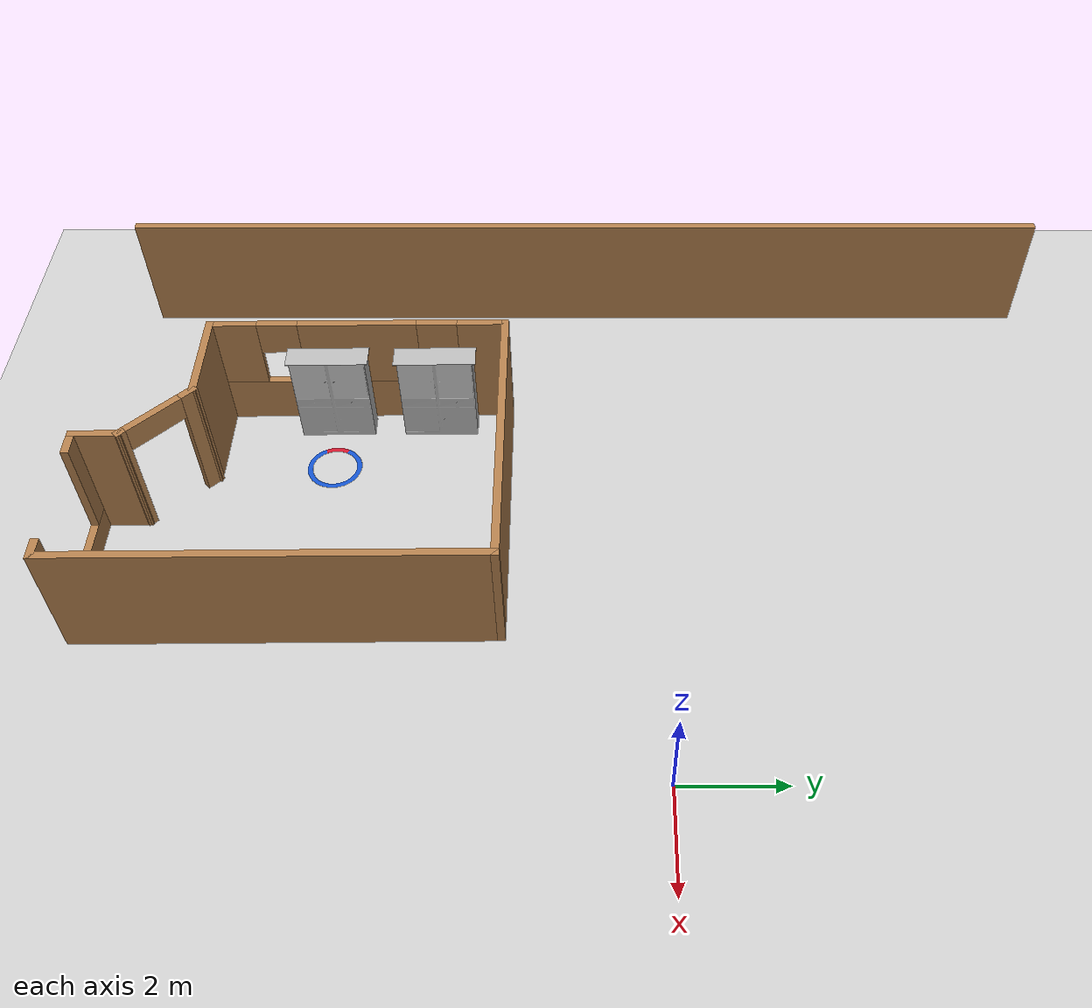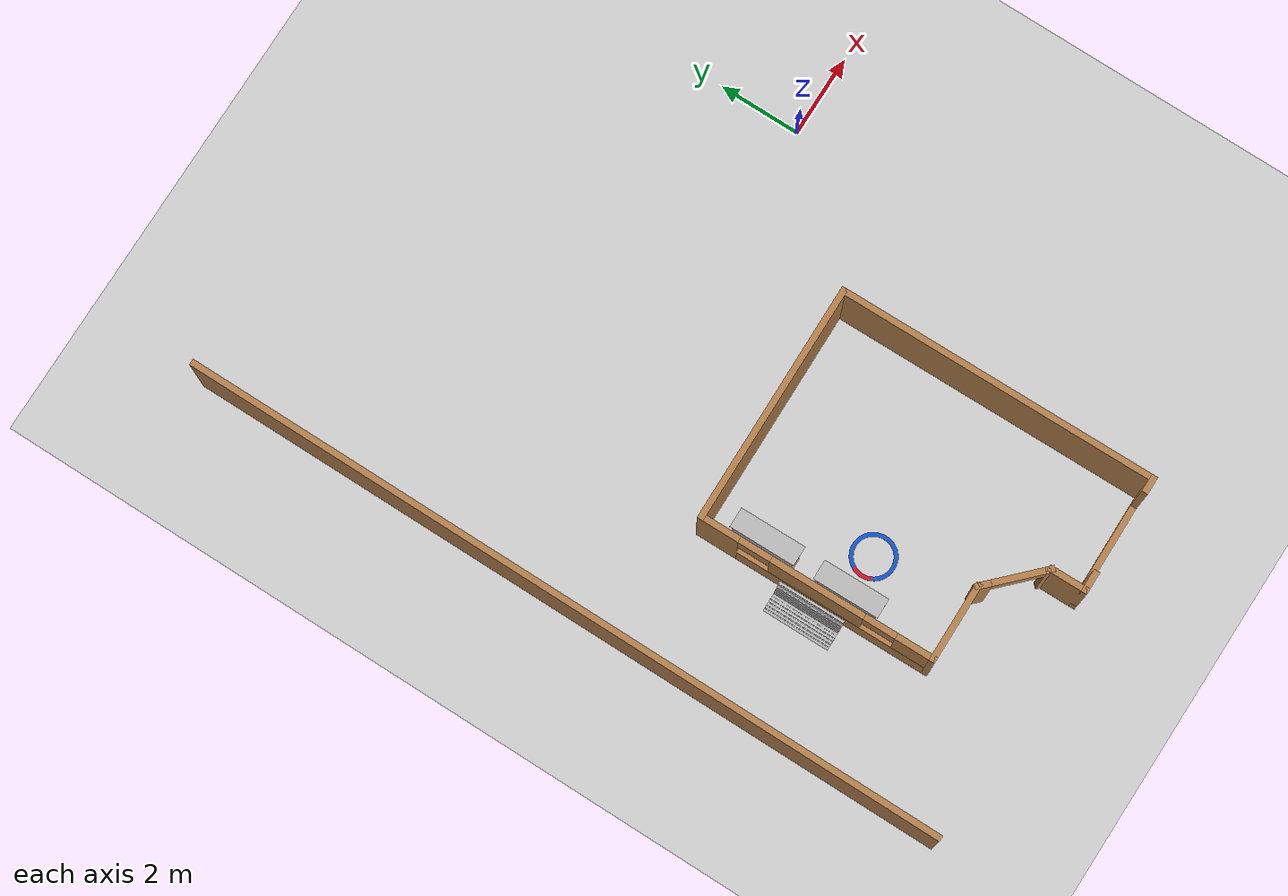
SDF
<sdf version="1.6">
 <world name="default">
  <model name="ground_plane">
   <static>1</static>
   <link name="link">
    <collision name="collision">
     <geometry><plane><normal>0 0 1</normal><size>100 100</size></plane></geometry>
     <surface>
      <contact><collide_bitmask>65535</collide_bitmask></contact>
      <friction><ode><mu>100</mu><mu2>50</mu2></ode></friction>
     </surface>
    </collision>
    <visual name="visual">
     <cast_shadows>0</cast_shadows>
     <geometry><plane><normal>0 0 1</normal><size>100 100</size></plane></geometry>
     <material>
      <script><uri>file://media/materials/scripts/gazebo.material</uri><name>Gazebo/Grey</name></script>
     </material>
    </visual>
   </link>
  </model>
  <model name="hospital_room_empty_clone">
   <link name="Wall_0">
    <pose>-4e-06 -3.9165 0 0 -0 0</pose>
    <visual name="Wall_0_Visual">
     <pose>0 0 1.25 0 -0 0</pose>
     <geometry><box><size>6 0.15 2.5</size></box></geometry>
     <material>
      <script><uri>file://media/materials/scripts/gazebo.material</uri><name>Gazebo/Wood</name></script>
      <ambient>1 1 1 1</ambient>
     </material>
     <meta><layer>0</layer></meta>
    </visual>
    <collision name="Wall_0_Collision">
     <pose>0 0 1.25 0 -0 0</pose>
     <geometry><box><size>6 0.15 2.5</size></box></geometry>
     <surface>
      <friction>
       <ode><mu>1</mu><mu2>1</mu2><fdir1>0 0 0</fdir1><slip1>0</slip1><slip2>0</slip2></ode>
       <torsional>
        <coefficient>1</coefficient>
        <patch_radius>0</patch_radius>
        <surface_radius>0</surface_radius>
        <use_patch_radius>1</use_patch_radius>
        <ode><slip>0</slip></ode>
       </torsional>
      </friction>
      <bounce><restitution_coefficient>0</restitution_coefficient><threshold>1e+06</threshold></bounce>
      <contact>
       <collide_without_contact>0</collide_without_contact>
       <collide_without_contact_bitmask>1</collide_without_contact_bitmask>
       <collide_bitmask>1</collide_bitmask>
       <ode>
        <soft_cfm>0</soft_cfm>
        <soft_erp>0.2</soft_erp>
        <kp>1e+13</kp>
        <kd>1</kd>
        <max_vel>0.01</max_vel>
        <min_depth>0</min_depth>
       </ode>
       <bullet>
        <split_impulse>1</split_impulse>
        <split_impulse_penetration_threshold>-0.01</split_impulse_penetration_threshold>
        <soft_cfm>0</soft_cfm>
        <soft_erp>0.2</soft_erp>
        <kp>1e+13</kp>
        <kd>1</kd>
       </bullet>
      </contact>
     </surface>
    </collision>
   </link>
   <link name="Wall_3">
    <pose>-2.925 0 0 0 -0 1.5708</pose>
    <visual name="Wall_3_Visual">
     <pose>0 0 1.25 0 -0 0</pose>
     <geometry><box><size>7.98302 0.15 2.5</size></box></geometry>
     <material>
      <script><uri>file://media/materials/scripts/gazebo.material</uri><name>Gazebo/Wood</name></script>
      <ambient>1 1 1 1</ambient>
     </material>
     <meta><layer>0</layer></meta>
    </visual>
    <collision name="Wall_3_Collision">
     <pose>0 0 1.25 0 -0 0</pose>
     <geometry><box><size>7.98302 0.15 2.5</size></box></geometry>
     <surface>
      <friction>
       <ode><mu>1</mu><mu2>1</mu2><fdir1>0 0 0</fdir1><slip1>0</slip1><slip2>0</slip2></ode>
       <torsional>
        <coefficient>1</coefficient>
        <patch_radius>0</patch_radius>
        <surface_radius>0</surface_radius>
        <use_patch_radius>1</use_patch_radius>
        <ode><slip>0</slip></ode>
       </torsional>
      </friction>
      <bounce><restitution_coefficient>0</restitution_coefficient><threshold>1e+06</threshold></bounce>
      <contact>
       <collide_without_contact>0</collide_without_contact>
       <collide_without_contact_bitmask>1</collide_without_contact_bitmask>
       <collide_bitmask>1</collide_bitmask>
       <ode>
        <soft_cfm>0</soft_cfm>
        <soft_erp>0.2</soft_erp>
        <kp>1e+13</kp>
        <kd>1</kd>
        <max_vel>0.01</max_vel>
        <min_depth>0</min_depth>
       </ode>
       <bullet>
        <split_impulse>1</split_impulse>
        <split_impulse_penetration_threshold>-0.01</split_impulse_penetration_threshold>
        <soft_cfm>0</soft_cfm>
        <soft_erp>0.2</soft_erp>
        <kp>1e+13</kp>
        <kd>1</kd>
       </bullet>
      </contact>
     </surface>
    </collision>
   </link>
   <link name="Wall_4">
    <pose>-1.5 3.9165 0 0 -0 0</pose>
    <visual name="Wall_4_Visual_0">
     <pose>-1.28125 0 1.25 0 -0 0</pose>
     <geometry><box><size>0.437506 0.15 2.5</size></box></geometry>
     <material>
      <script><uri>file://media/materials/scripts/gazebo.material</uri><name>Gazebo/Wood</name></script>
      <ambient>1 1 1 1</ambient>
     </material>
     <meta><layer>0</layer></meta>
    </visual>
    <visual name="Wall_4_Visual_1">
     <pose>0.218753 0 0.25 0 -0 0</pose>
     <geometry><box><size>2.56249 0.15 0.5</size></box></geometry>
     <material>
      <script><uri>file://media/materials/scripts/gazebo.material</uri><name>Gazebo/Wood</name></script>
      <ambient>1 1 1 1</ambient>
     </material>
     <meta><layer>0</layer></meta>
    </visual>
    <visual name="Wall_4_Visual_2">
     <pose>1.21875 0 1.5 0 -0 0</pose>
     <geometry><box><size>0.562494 0.15 2</size></box></geometry>
     <material>
      <script><uri>file://media/materials/scripts/gazebo.material</uri><name>Gazebo/Wood</name></script>
      <ambient>1 1 1 1</ambient>
     </material>
     <meta><layer>0</layer></meta>
    </visual>
    <collision name="Wall_4_Collision_0">
     <pose>-1.28125 0 1.25 0 -0 0</pose>
     <geometry><box><size>0.437506 0.15 2.5</size></box></geometry>
     <surface>
      <friction>
       <ode><mu>1</mu><mu2>1</mu2><fdir1>0 0 0</fdir1><slip1>0</slip1><slip2>0</slip2></ode>
       <torsional>
        <coefficient>1</coefficient>
        <patch_radius>0</patch_radius>
        <surface_radius>0</surface_radius>
        <use_patch_radius>1</use_patch_radius>
        <ode><slip>0</slip></ode>
       </torsional>
      </friction>
      <bounce><restitution_coefficient>0</restitution_coefficient><threshold>1e+06</threshold></bounce>
      <contact>
       <collide_without_contact>0</collide_without_contact>
       <collide_without_contact_bitmask>1</collide_without_contact_bitmask>
       <collide_bitmask>1</collide_bitmask>
       <ode>
        <soft_cfm>0</soft_cfm>
        <soft_erp>0.2</soft_erp>
        <kp>1e+13</kp>
        <kd>1</kd>
        <max_vel>0.01</max_vel>
        <min_depth>0</min_depth>
       </ode>
       <bullet>
        <split_impulse>1</split_impulse>
        <split_impulse_penetration_threshold>-0.01</split_impulse_penetration_threshold>
        <soft_cfm>0</soft_cfm>
        <soft_erp>0.2</soft_erp>
        <kp>1e+13</kp>
        <kd>1</kd>
       </bullet>
      </contact>
     </surface>
    </collision>
    <collision name="Wall_4_Collision_1">
     <pose>0.218753 0 0.25 0 -0 0</pose>
     <geometry><box><size>2.56249 0.15 0.5</size></box></geometry>
     <surface>
      <friction>
       <ode><mu>1</mu><mu2>1</mu2><fdir1>0 0 0</fdir1><slip1>0</slip1><slip2>0</slip2></ode>
       <torsional>
        <coefficient>1</coefficient>
        <patch_radius>0</patch_radius>
        <surface_radius>0</surface_radius>
        <use_patch_radius>1</use_patch_radius>
        <ode><slip>0</slip></ode>
       </torsional>
      </friction>
      <bounce><restitution_coefficient>0</restitution_coefficient><threshold>1e+06</threshold></bounce>
      <contact>
       <collide_without_contact>0</collide_without_contact>
       <collide_without_contact_bitmask>1</collide_without_contact_bitmask>
       <collide_bitmask>1</collide_bitmask>
       <ode>
        <soft_cfm>0</soft_cfm>
        <soft_erp>0.2</soft_erp>
        <kp>1e+13</kp>
        <kd>1</kd>
        <max_vel>0.01</max_vel>
        <min_depth>0</min_depth>
       </ode>
       <bullet>
        <split_impulse>1</split_impulse>
        <split_impulse_penetration_threshold>-0.01</split_impulse_penetration_threshold>
        <soft_cfm>0</soft_cfm>
        <soft_erp>0.2</soft_erp>
        <kp>1e+13</kp>
        <kd>1</kd>
       </bullet>
      </contact>
     </surface>
    </collision>
    <collision name="Wall_4_Collision_2">
     <pose>1.21875 0 1.5 0 -0 0</pose>
     <geometry><box><size>0.562494 0.15 2</size></box></geometry>
     <surface>
      <friction>
       <ode><mu>1</mu><mu2>1</mu2><fdir1>0 0 0</fdir1><slip1>0</slip1><slip2>0</slip2></ode>
       <torsional>
        <coefficient>1</coefficient>
        <patch_radius>0</patch_radius>
        <surface_radius>0</surface_radius>
        <use_patch_radius>1</use_patch_radius>
        <ode><slip>0</slip></ode>
       </torsional>
      </friction>
      <bounce><restitution_coefficient>0</restitution_coefficient><threshold>1e+06</threshold></bounce>
      <contact>
       <collide_without_contact>0</collide_without_contact>
       <collide_without_contact_bitmask>1</collide_without_contact_bitmask>
       <collide_bitmask>1</collide_bitmask>
       <ode>
        <soft_cfm>0</soft_cfm>
        <soft_erp>0.2</soft_erp>
        <kp>1e+13</kp>
        <kd>1</kd>
        <max_vel>0.01</max_vel>
        <min_depth>0</min_depth>
       </ode>
       <bullet>
        <split_impulse>1</split_impulse>
        <split_impulse_penetration_threshold>-0.01</split_impulse_penetration_threshold>
        <soft_cfm>0</soft_cfm>
        <soft_erp>0.2</soft_erp>
        <kp>1e+13</kp>
        <kd>1</kd>
       </bullet>
      </contact>
     </surface>
    </collision>
   </link>
   <link name="Wall_5">
    <pose>-0.075004 3.4915 0 0 0 -1.5708</pose>
    <visual name="Wall_5_Visual">
     <pose>0 0 1.25 0 -0 0</pose>
     <geometry><box><size>1 0.15 2.5</size></box></geometry>
     <material>
      <script><uri>file://media/materials/scripts/gazebo.material</uri><name>Gazebo/Wood</name></script>
      <ambient>1 1 1 1</ambient>
     </material>
     <meta><layer>0</layer></meta>
    </visual>
    <collision name="Wall_5_Collision">
     <pose>0 0 1.25 0 -0 0</pose>
     <geometry><box><size>1 0.15 2.5</size></box></geometry>
     <surface>
      <friction>
       <ode><mu>1</mu><mu2>1</mu2><fdir1>0 0 0</fdir1><slip1>0</slip1><slip2>0</slip2></ode>
       <torsional>
        <coefficient>1</coefficient>
        <patch_radius>0</patch_radius>
        <surface_radius>0</surface_radius>
        <use_patch_radius>1</use_patch_radius>
        <ode><slip>0</slip></ode>
       </torsional>
      </friction>
      <bounce><restitution_coefficient>0</restitution_coefficient><threshold>1e+06</threshold></bounce>
      <contact>
       <collide_without_contact>0</collide_without_contact>
       <collide_without_contact_bitmask>1</collide_without_contact_bitmask>
       <collide_bitmask>1</collide_bitmask>
       <ode>
        <soft_cfm>0</soft_cfm>
        <soft_erp>0.2</soft_erp>
        <kp>1e+13</kp>
        <kd>1</kd>
        <max_vel>0.01</max_vel>
        <min_depth>0</min_depth>
       </ode>
       <bullet>
        <split_impulse>1</split_impulse>
        <split_impulse_penetration_threshold>-0.01</split_impulse_penetration_threshold>
        <soft_cfm>0</soft_cfm>
        <soft_erp>0.2</soft_erp>
        <kp>1e+13</kp>
        <kd>1</kd>
       </bullet>
      </contact>
     </surface>
    </collision>
   </link>
   <link name="Wall_7">
    <pose>2.925 -1 0 0 -0 1.5708</pose>
    <visual name="Wall_7_Visual_0">
     <pose>-2.47597 0 1.25 0 -0 0</pose>
     <geometry><box><size>1.03106 0.15 2.5</size></box></geometry>
     <material>
      <script><uri>file://media/materials/scripts/gazebo.material</uri><name>Gazebo/Wood</name></script>
      <ambient>0.921569 0.807843 0.615686 1</ambient>
     </material>
     <meta><layer>0</layer></meta>
    </visual>
    <visual name="Wall_7_Visual_1">
     <pose>0.515531 0 0.5 0 -0 0</pose>
     <geometry><box><size>4.95194 0.15 1</size></box></geometry>
     <material>
      <script><uri>file://media/materials/scripts/gazebo.material</uri><name>Gazebo/Wood</name></script>
      <ambient>0.921569 0.807843 0.615686 1</ambient>
     </material>
     <meta><layer>0</layer></meta>
    </visual>
    <visual name="Wall_7_Visual_2">
     <pose>0.016139 0 1.75 0 -0 0</pose>
     <geometry><box><size>2.35315 0.15 1.5</size></box></geometry>
     <material>
      <script><uri>file://media/materials/scripts/gazebo.material</uri><name>Gazebo/Wood</name></script>
      <ambient>0.921569 0.807843 0.615686 1</ambient>
     </material>
     <meta><layer>0</layer></meta>
    </visual>
    <visual name="Wall_7_Visual_3">
     <pose>2.49211 0 1.75 0 -0 0</pose>
     <geometry><box><size>0.998785 0.15 1.5</size></box></geometry>
     <material>
      <script><uri>file://media/materials/scripts/gazebo.material</uri><name>Gazebo/Wood</name></script>
      <ambient>0.921569 0.807843 0.615686 1</ambient>
     </material>
     <meta><layer>0</layer></meta>
    </visual>
    <visual name="Wall_7_Visual_4">
     <pose>-1.56044 0 2.15 0 -0 0</pose>
     <geometry><box><size>0.8 0.15 0.7</size></box></geometry>
     <material>
      <script><uri>file://media/materials/scripts/gazebo.material</uri><name>Gazebo/Wood</name></script>
      <ambient>0.921569 0.807843 0.615686 1</ambient>
     </material>
     <meta><layer>0</layer></meta>
    </visual>
    <visual name="Wall_7_Visual_5">
     <pose>1.59272 0 2.15 0 -0 0</pose>
     <geometry><box><size>0.8 0.15 0.7</size></box></geometry>
     <material>
      <script><uri>file://media/materials/scripts/gazebo.material</uri><name>Gazebo/Wood</name></script>
      <ambient>0.921569 0.807843 0.615686 1</ambient>
     </material>
     <meta><layer>0</layer></meta>
    </visual>
    <collision name="Wall_7_Collision_0">
     <pose>-2.47597 0 1.25 0 -0 0</pose>
     <geometry><box><size>1.03106 0.15 2.5</size></box></geometry>
     <surface>
      <friction>
       <ode><mu>1</mu><mu2>1</mu2><fdir1>0 0 0</fdir1><slip1>0</slip1><slip2>0</slip2></ode>
       <torsional>
        <coefficient>1</coefficient>
        <patch_radius>0</patch_radius>
        <surface_radius>0</surface_radius>
        <use_patch_radius>1</use_patch_radius>
        <ode><slip>0</slip></ode>
       </torsional>
      </friction>
      <bounce><restitution_coefficient>0</restitution_coefficient><threshold>1e+06</threshold></bounce>
      <contact>
       <collide_without_contact>0</collide_without_contact>
       <collide_without_contact_bitmask>1</collide_without_contact_bitmask>
       <collide_bitmask>1</collide_bitmask>
       <ode>
        <soft_cfm>0</soft_cfm>
        <soft_erp>0.2</soft_erp>
        <kp>1e+13</kp>
        <kd>1</kd>
        <max_vel>0.01</max_vel>
        <min_depth>0</min_depth>
       </ode>
       <bullet>
        <split_impulse>1</split_impulse>
        <split_impulse_penetration_threshold>-0.01</split_impulse_penetration_threshold>
        <soft_cfm>0</soft_cfm>
        <soft_erp>0.2</soft_erp>
        <kp>1e+13</kp>
        <kd>1</kd>
       </bullet>
      </contact>
     </surface>
    </collision>
    <collision name="Wall_7_Collision_1">
     <pose>0.515531 0 0.5 0 -0 0</pose>
     <geometry><box><size>4.95194 0.15 1</size></box></geometry>
     <surface>
      <friction>
       <ode><mu>1</mu><mu2>1</mu2><fdir1>0 0 0</fdir1><slip1>0</slip1><slip2>0</slip2></ode>
       <torsional>
        <coefficient>1</coefficient>
        <patch_radius>0</patch_radius>
        <surface_radius>0</surface_radius>
        <use_patch_radius>1</use_patch_radius>
        <ode><slip>0</slip></ode>
       </torsional>
      </friction>
      <bounce><restitution_coefficient>0</restitution_coefficient><threshold>1e+06</threshold></bounce>
      <contact>
       <collide_without_contact>0</collide_without_contact>
       <collide_without_contact_bitmask>1</collide_without_contact_bitmask>
       <collide_bitmask>1</collide_bitmask>
       <ode>
        <soft_cfm>0</soft_cfm>
        <soft_erp>0.2</soft_erp>
        <kp>1e+13</kp>
        <kd>1</kd>
        <max_vel>0.01</max_vel>
        <min_depth>0</min_depth>
       </ode>
       <bullet>
        <split_impulse>1</split_impulse>
        <split_impulse_penetration_threshold>-0.01</split_impulse_penetration_threshold>
        <soft_cfm>0</soft_cfm>
        <soft_erp>0.2</soft_erp>
        <kp>1e+13</kp>
        <kd>1</kd>
       </bullet>
      </contact>
     </surface>
    </collision>
    <collision name="Wall_7_Collision_2">
     <pose>0.016139 0 1.75 0 -0 0</pose>
     <geometry><box><size>2.35315 0.15 1.5</size></box></geometry>
     <surface>
      <friction>
       <ode><mu>1</mu><mu2>1</mu2><fdir1>0 0 0</fdir1><slip1>0</slip1><slip2>0</slip2></ode>
       <torsional>
        <coefficient>1</coefficient>
        <patch_radius>0</patch_radius>
        <surface_radius>0</surface_radius>
        <use_patch_radius>1</use_patch_radius>
        <ode><slip>0</slip></ode>
       </torsional>
      </friction>
      <bounce><restitution_coefficient>0</restitution_coefficient><threshold>1e+06</threshold></bounce>
      <contact>
       <collide_without_contact>0</collide_without_contact>
       <collide_without_contact_bitmask>1</collide_without_contact_bitmask>
       <collide_bitmask>1</collide_bitmask>
       <ode>
        <soft_cfm>0</soft_cfm>
        <soft_erp>0.2</soft_erp>
        <kp>1e+13</kp>
        <kd>1</kd>
        <max_vel>0.01</max_vel>
        <min_depth>0</min_depth>
       </ode>
       <bullet>
        <split_impulse>1</split_impulse>
        <split_impulse_penetration_threshold>-0.01</split_impulse_penetration_threshold>
        <soft_cfm>0</soft_cfm>
        <soft_erp>0.2</soft_erp>
        <kp>1e+13</kp>
        <kd>1</kd>
       </bullet>
      </contact>
     </surface>
    </collision>
    <collision name="Wall_7_Collision_3">
     <pose>2.49211 0 1.75 0 -0 0</pose>
     <geometry><box><size>0.998785 0.15 1.5</size></box></geometry>
     <surface>
      <friction>
       <ode><mu>1</mu><mu2>1</mu2><fdir1>0 0 0</fdir1><slip1>0</slip1><slip2>0</slip2></ode>
       <torsional>
        <coefficient>1</coefficient>
        <patch_radius>0</patch_radius>
        <surface_radius>0</surface_radius>
        <use_patch_radius>1</use_patch_radius>
        <ode><slip>0</slip></ode>
       </torsional>
      </friction>
      <bounce><restitution_coefficient>0</restitution_coefficient><threshold>1e+06</threshold></bounce>
      <contact>
       <collide_without_contact>0</collide_without_contact>
       <collide_without_contact_bitmask>1</collide_without_contact_bitmask>
       <collide_bitmask>1</collide_bitmask>
       <ode>
        <soft_cfm>0</soft_cfm>
        <soft_erp>0.2</soft_erp>
        <kp>1e+13</kp>
        <kd>1</kd>
        <max_vel>0.01</max_vel>
        <min_depth>0</min_depth>
       </ode>
       <bullet>
        <split_impulse>1</split_impulse>
        <split_impulse_penetration_threshold>-0.01</split_impulse_penetration_threshold>
        <soft_cfm>0</soft_cfm>
        <soft_erp>0.2</soft_erp>
        <kp>1e+13</kp>
        <kd>1</kd>
       </bullet>
      </contact>
     </surface>
    </collision>
    <collision name="Wall_7_Collision_4">
     <pose>-1.56044 0 2.15 0 -0 0</pose>
     <geometry><box><size>0.8 0.15 0.7</size></box></geometry>
     <surface>
      <friction>
       <ode><mu>1</mu><mu2>1</mu2><fdir1>0 0 0</fdir1><slip1>0</slip1><slip2>0</slip2></ode>
       <torsional>
        <coefficient>1</coefficient>
        <patch_radius>0</patch_radius>
        <surface_radius>0</surface_radius>
        <use_patch_radius>1</use_patch_radius>
        <ode><slip>0</slip></ode>
       </torsional>
      </friction>
      <bounce><restitution_coefficient>0</restitution_coefficient><threshold>1e+06</threshold></bounce>
      <contact>
       <collide_without_contact>0</collide_without_contact>
       <collide_without_contact_bitmask>1</collide_without_contact_bitmask>
       <collide_bitmask>1</collide_bitmask>
       <ode>
        <soft_cfm>0</soft_cfm>
        <soft_erp>0.2</soft_erp>
        <kp>1e+13</kp>
        <kd>1</kd>
        <max_vel>0.01</max_vel>
        <min_depth>0</min_depth>
       </ode>
       <bullet>
        <split_impulse>1</split_impulse>
        <split_impulse_penetration_threshold>-0.01</split_impulse_penetration_threshold>
        <soft_cfm>0</soft_cfm>
        <soft_erp>0.2</soft_erp>
        <kp>1e+13</kp>
        <kd>1</kd>
       </bullet>
      </contact>
     </surface>
    </collision>
    <collision name="Wall_7_Collision_5">
     <pose>1.59272 0 2.15 0 -0 0</pose>
     <geometry><box><size>0.8 0.15 0.7</size></box></geometry>
     <surface>
      <friction>
       <ode><mu>1</mu><mu2>1</mu2><fdir1>0 0 0</fdir1><slip1>0</slip1><slip2>0</slip2></ode>
       <torsional>
        <coefficient>1</coefficient>
        <patch_radius>0</patch_radius>
        <surface_radius>0</surface_radius>
        <use_patch_radius>1</use_patch_radius>
        <ode><slip>0</slip></ode>
       </torsional>
      </friction>
      <bounce><restitution_coefficient>0</restitution_coefficient><threshold>1e+06</threshold></bounce>
      <contact>
       <collide_without_contact>0</collide_without_contact>
       <collide_without_contact_bitmask>1</collide_without_contact_bitmask>
       <collide_bitmask>1</collide_bitmask>
       <ode>
        <soft_cfm>0</soft_cfm>
        <soft_erp>0.2</soft_erp>
        <kp>1e+13</kp>
        <kd>1</kd>
        <max_vel>0.01</max_vel>
        <min_depth>0</min_depth>
       </ode>
       <bullet>
        <split_impulse>1</split_impulse>
        <split_impulse_penetration_threshold>-0.01</split_impulse_penetration_threshold>
        <soft_cfm>0</soft_cfm>
        <soft_erp>0.2</soft_erp>
        <kp>1e+13</kp>
        <kd>1</kd>
       </bullet>
      </contact>
     </surface>
    </collision>
   </link>
   <link name="Wall_8">
    <pose>2 1.9166 0 0 -0 3.14148</pose>
    <visual name="Wall_8_Visual">
     <pose>0 0 1.25 0 -0 0</pose>
     <geometry><box><size>2 0.15 2.5</size></box></geometry>
     <material>
      <script><uri>file://media/materials/scripts/gazebo.material</uri><name>Gazebo/Wood</name></script>
      <ambient>1 1 1 1</ambient>
     </material>
     <meta><layer>0</layer></meta>
    </visual>
    <collision name="Wall_8_Collision">
     <pose>0 0 1.25 0 -0 0</pose>
     <geometry><box><size>2 0.15 2.5</size></box></geometry>
     <surface>
      <friction>
       <ode><mu>1</mu><mu2>1</mu2><fdir1>0 0 0</fdir1><slip1>0</slip1><slip2>0</slip2></ode>
       <torsional>
        <coefficient>1</coefficient>
        <patch_radius>0</patch_radius>
        <surface_radius>0</surface_radius>
        <use_patch_radius>1</use_patch_radius>
        <ode><slip>0</slip></ode>
       </torsional>
      </friction>
      <bounce><restitution_coefficient>0</restitution_coefficient><threshold>1e+06</threshold></bounce>
      <contact>
       <collide_without_contact>0</collide_without_contact>
       <collide_without_contact_bitmask>1</collide_without_contact_bitmask>
       <collide_bitmask>1</collide_bitmask>
       <ode>
        <soft_cfm>0</soft_cfm>
        <soft_erp>0.2</soft_erp>
        <kp>1e+13</kp>
        <kd>1</kd>
        <max_vel>0.01</max_vel>
        <min_depth>0</min_depth>
       </ode>
       <bullet>
        <split_impulse>1</split_impulse>
        <split_impulse_penetration_threshold>-0.01</split_impulse_penetration_threshold>
        <soft_cfm>0</soft_cfm>
        <soft_erp>0.2</soft_erp>
        <kp>1e+13</kp>
        <kd>1</kd>
       </bullet>
      </contact>
     </surface>
    </collision>
   </link>
   <link name="Wall_9">
    <pose>0.499996 2.4916 0 0 -0 2.35628</pose>
    <visual name="Wall_9_Visual_1">
     <pose>0.785148 0 1.25 0 -0 0</pose>
     <geometry><box><size>0.205905 0.15 2.5</size></box></geometry>
     <material>
      <script><uri>file://media/materials/scripts/gazebo.material</uri><name>Gazebo/Wood</name></script>
      <ambient>1 1 1 1</ambient>
     </material>
     <meta><layer>0</layer></meta>
    </visual>
    <visual name="Wall_9_Visual_0">
     <pose>-0.702952 0 1.25 0 -0 0</pose>
     <geometry><box><size>0.370295 0.15 2.5</size></box></geometry>
     <material>
      <script><uri>file://media/materials/scripts/gazebo.material</uri><name>Gazebo/Wood</name></script>
      <ambient>1 1 1 1</ambient>
     </material>
     <meta><layer>0</layer></meta>
    </visual>
    <visual name="Wall_9_Visual_2">
     <pose>0.082195 0 2.25 0 -0 0</pose>
     <geometry><box><size>1.2 0.15 0.5</size></box></geometry>
     <material>
      <script><uri>file://media/materials/scripts/gazebo.material</uri><name>Gazebo/Wood</name></script>
      <ambient>1 1 1 1</ambient>
     </material>
     <meta><layer>0</layer></meta>
    </visual>
    <collision name="Wall_9_Collision_0">
     <pose>-0.702952 0 1.25 0 -0 0</pose>
     <geometry><box><size>0.370295 0.15 2.5</size></box></geometry>
     <surface>
      <friction>
       <ode><mu>1</mu><mu2>1</mu2><fdir1>0 0 0</fdir1><slip1>0</slip1><slip2>0</slip2></ode>
       <torsional>
        <coefficient>1</coefficient>
        <patch_radius>0</patch_radius>
        <surface_radius>0</surface_radius>
        <use_patch_radius>1</use_patch_radius>
        <ode><slip>0</slip></ode>
       </torsional>
      </friction>
      <bounce><restitution_coefficient>0</restitution_coefficient><threshold>1e+06</threshold></bounce>
      <contact>
       <collide_without_contact>0</collide_without_contact>
       <collide_without_contact_bitmask>1</collide_without_contact_bitmask>
       <collide_bitmask>1</collide_bitmask>
       <ode>
        <soft_cfm>0</soft_cfm>
        <soft_erp>0.2</soft_erp>
        <kp>1e+13</kp>
        <kd>1</kd>
        <max_vel>0.01</max_vel>
        <min_depth>0</min_depth>
       </ode>
       <bullet>
        <split_impulse>1</split_impulse>
        <split_impulse_penetration_threshold>-0.01</split_impulse_penetration_threshold>
        <soft_cfm>0</soft_cfm>
        <soft_erp>0.2</soft_erp>
        <kp>1e+13</kp>
        <kd>1</kd>
       </bullet>
      </contact>
     </surface>
    </collision>
    <collision name="Wall_9_Collision_1">
     <pose>0.785148 0 1.25 0 -0 0</pose>
     <geometry><box><size>0.205905 0.15 2.5</size></box></geometry>
     <surface>
      <friction>
       <ode><mu>1</mu><mu2>1</mu2><fdir1>0 0 0</fdir1><slip1>0</slip1><slip2>0</slip2></ode>
       <torsional>
        <coefficient>1</coefficient>
        <patch_radius>0</patch_radius>
        <surface_radius>0</surface_radius>
        <use_patch_radius>1</use_patch_radius>
        <ode><slip>0</slip></ode>
       </torsional>
      </friction>
      <bounce><restitution_coefficient>0</restitution_coefficient><threshold>1e+06</threshold></bounce>
      <contact>
       <collide_without_contact>0</collide_without_contact>
       <collide_without_contact_bitmask>1</collide_without_contact_bitmask>
       <collide_bitmask>1</collide_bitmask>
       <ode>
        <soft_cfm>0</soft_cfm>
        <soft_erp>0.2</soft_erp>
        <kp>1e+13</kp>
        <kd>1</kd>
        <max_vel>0.01</max_vel>
        <min_depth>0</min_depth>
       </ode>
       <bullet>
        <split_impulse>1</split_impulse>
        <split_impulse_penetration_threshold>-0.01</split_impulse_penetration_threshold>
        <soft_cfm>0</soft_cfm>
        <soft_erp>0.2</soft_erp>
        <kp>1e+13</kp>
        <kd>1</kd>
       </bullet>
      </contact>
     </surface>
    </collision>
    <collision name="Wall_9_Collision_2">
     <pose>0.082195 0 2.25 0 -0 0</pose>
     <geometry><box><size>1.2 0.15 0.5</size></box></geometry>
     <surface>
      <friction>
       <ode><mu>1</mu><mu2>1</mu2><fdir1>0 0 0</fdir1><slip1>0</slip1><slip2>0</slip2></ode>
       <torsional>
        <coefficient>1</coefficient>
        <patch_radius>0</patch_radius>
        <surface_radius>0</surface_radius>
        <use_patch_radius>1</use_patch_radius>
        <ode><slip>0</slip></ode>
       </torsional>
      </friction>
      <bounce><restitution_coefficient>0</restitution_coefficient><threshold>1e+06</threshold></bounce>
      <contact>
       <collide_without_contact>0</collide_without_contact>
       <collide_without_contact_bitmask>1</collide_without_contact_bitmask>
       <collide_bitmask>1</collide_bitmask>
       <ode>
        <soft_cfm>0</soft_cfm>
        <soft_erp>0.2</soft_erp>
        <kp>1e+13</kp>
        <kd>1</kd>
        <max_vel>0.01</max_vel>
        <min_depth>0</min_depth>
       </ode>
       <bullet>
        <split_impulse>1</split_impulse>
        <split_impulse_penetration_threshold>-0.01</split_impulse_penetration_threshold>
        <soft_cfm>0</soft_cfm>
        <soft_erp>0.2</soft_erp>
        <kp>1e+13</kp>
        <kd>1</kd>
       </bullet>
      </contact>
     </surface>
    </collision>
   </link>
   <static>1</static>
   <pose>-5.93013 -6.96107 0 0 0 -3.1308</pose>
  </model>
  <model name="closet_2">
   <static>0</static>
   <link name="link">
    <inertial>
     <mass>10</mass>
     <inertia><ixx>0.2</ixx><ixy>0</ixy><ixz>0</ixz><iyy>0.2</iyy><iyz>0</iyz><izz>0.2</izz></inertia>
    </inertial>
    <collision name="collision"><geometry><mesh><uri>model://closet/closet.dae</uri></mesh></geometry></collision>
    <visual name="visual"><geometry><mesh><uri>model://closet/closet.dae</uri></mesh></geometry></visual>
   </link>
   <pose>-8.46178 -4.48094 -0.03 0 0 -1.55888</pose>
  </model>
  <model name="Untitled">
   <pose>-12 -1.5 0 0 -0 0</pose>
   <link name="Wall_0">
    <collision name="Wall_0_Collision">
     <geometry><box><size>19.15 0.15 2.5</size></box></geometry>
     <pose>0 0 1.25 0 -0 0</pose>
    </collision>
    <visual name="Wall_0_Visual">
     <pose>0 0 1.25 0 -0 0</pose>
     <geometry><box><size>19.15 0.15 2.5</size></box></geometry>
     <material>
      <script><uri>file://media/materials/scripts/gazebo.material</uri><name>Gazebo/Wood</name></script>
      <ambient>1 1 1 1</ambient>
     </material>
     <meta><layer>0</layer></meta>
    </visual>
    <pose>0 0 0 0 -0 1.5708</pose>
   </link>
   <static>1</static>
  </model>
  <model name="closet_5">
   <static>0</static>
   <link name="link">
    <inertial>
     <mass>10</mass>
     <inertia><ixx>0.2</ixx><ixy>0</ixy><ixz>0</ixz><iyy>0.2</iyy><iyz>0</iyz><izz>0.2</izz></inertia>
    </inertial>
    <collision name="collision"><geometry><mesh><uri>model://closet/closet.dae</uri></mesh></geometry></collision>
    <visual name="visual"><geometry><mesh><uri>model://closet/closet.dae</uri></mesh></geometry></visual>
   </link>
   <pose>-8.453 -6.61139 -0.03 0 0 -1.55782</pose>
  </model>
  <model name="wooden_bench_3">
   <static>0</static>
   <link name="link">
    <inertial>
     <pose>0 -0.2 0 0 -0 0</pose>
     <mass>10</mass>
     <inertia><ixx>1</ixx><ixy>0</ixy><ixz>0</ixz><iyy>1</iyy><iyz>0</iyz><izz>1</izz></inertia>
    </inertial>
    <collision name="collision">
     <geometry><mesh><uri>model://wooden_bench/wooden_bench.dae</uri></mesh></geometry>
    </collision>
    <visual name="visual">
     <geometry><mesh><uri>model://wooden_bench/wooden_bench.dae</uri></mesh></geometry>
    </visual>
   </link>
   <pose>-9.41193 -6.0232 0.002874 0.04382 -1e-05 1.58075</pose>
  </model>
  <model name="marker_3">
   <static>1</static>
   <link name="link">
    <inertial>
     <mass>10</mass>
     <inertia><ixx>0.2</ixx><ixy>0</ixy><ixz>0</ixz><iyy>0.2</iyy><iyz>0</iyz><izz>0.2</izz></inertia>
    </inertial>
    <visual name="visual"><geometry><mesh><uri>model://marker/marker.dae</uri></mesh></geometry></visual>
   </link>
   <pose>-7.27827 -6.587 0 0 -0 3.13415</pose>
  </model>
 </world>
</sdf>
